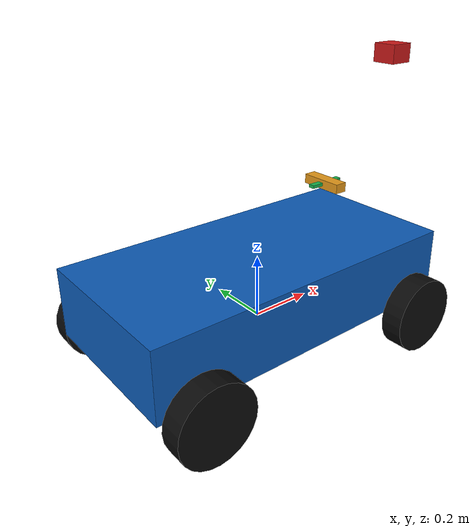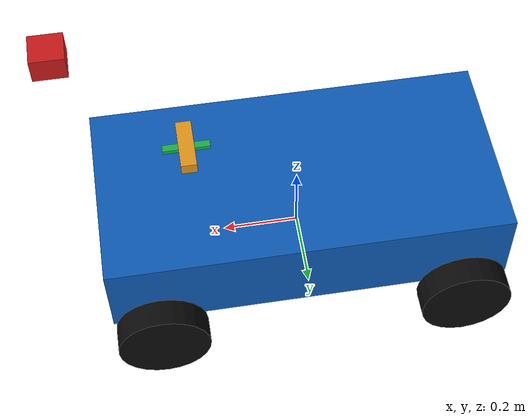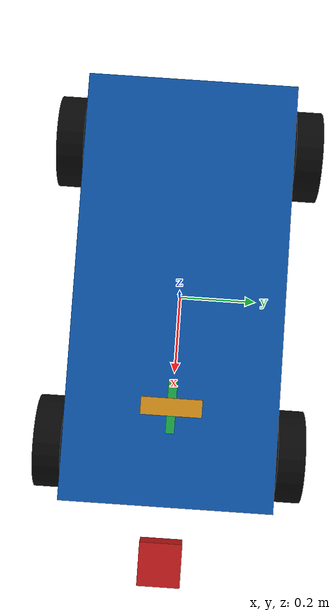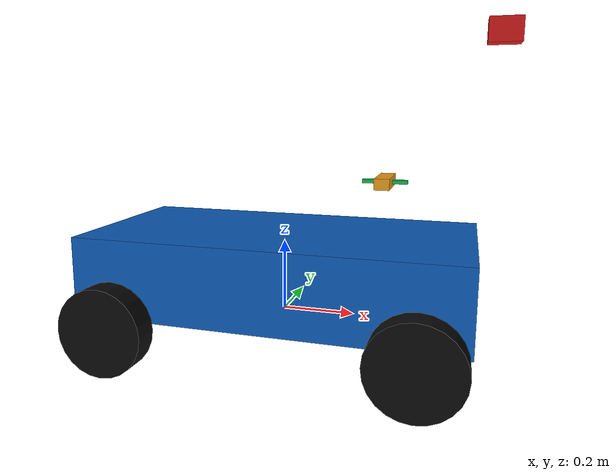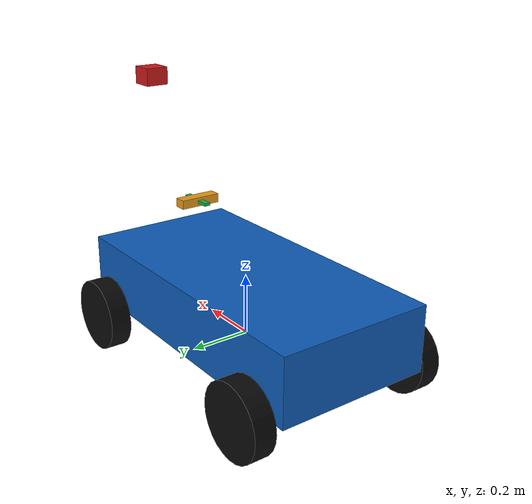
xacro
<?xml version="1.0"?>
<!-- Размеры и массы взяты из course kit: models/course_ackermann/model.sdf.
     Единицы СИ, оси REP-103: x вперёд, y влево, z вверх. -->
<robot name="course_ackermann" xmlns:xacro="http://www.ros.org/wiki/xacro">
  <xacro:arg name="wheel_base" default="0.8"/>
  <xacro:arg name="track_width" default="0.62"/>
  <xacro:arg name="wheel_radius" default="0.12"/>

  <xacro:property name="wheel_base" value="$(arg wheel_base)"/>
  <xacro:property name="track_width" value="$(arg track_width)"/>
  <xacro:property name="wheel_radius" value="$(arg wheel_radius)"/>
  <xacro:property name="wheel_width" value="0.07"/>
  <xacro:property name="wheel_mass" value="0.8"/>
  <xacro:property name="wheel_transverse_inertia"
                  value="${wheel_mass * (3 * wheel_radius**2 + wheel_width**2) / 12}"/>
  <xacro:property name="body_size" value="1.05 0.52 0.22"/>
  <xacro:property name="body_z" value="0.12"/>
  <xacro:property name="steering_limit" value="0.55"/>
  <xacro:property name="steering_effort" value="25.0"/>
  <!-- В SDF скорости руля нет, а URDF требует её у revolute. -->
  <xacro:property name="steering_velocity" value="2.0"/>
  <xacro:property name="sensor_xyz" value="0.28 0 0.38"/>
  <xacro:property name="sensor_mass" value="0.033333333333"/>
  <xacro:property name="sensor_inertia" value="0.000333333333"/>

  <material name="body"><color rgba="0.05 0.36 0.72 1"/></material>
  <material name="wheel"><color rgba="0.04 0.04 0.04 1"/></material>
  <material name="camera"><color rgba="0.9 0.6 0.1 1"/></material>
  <material name="lidar"><color rgba="0.8 0.1 0.1 1"/></material>
  <material name="imu"><color rgba="0.1 0.7 0.3 1"/></material>

  <xacro:macro name="diagonal_inertial" params="mass ixx iyy izz">
    <inertial>
      <mass value="${mass}"/>
      <inertia ixx="${ixx}" ixy="0" ixz="0" iyy="${iyy}" iyz="0" izz="${izz}"/>
    </inertial>
  </xacro:macro>

  <!-- Поворотный кулак: только сочленение руля, геометрии нет, как в SDF. -->
  <xacro:macro name="knuckle" params="prefix x y">
    <link name="${prefix}_knuckle">
      <xacro:diagonal_inertial mass="0.2" ixx="0.001" iyy="0.001" izz="0.001"/>
    </link>
    <joint name="${prefix}_steering_joint" type="revolute">
      <parent link="base_link"/>
      <child link="${prefix}_knuckle"/>
      <origin xyz="${x} ${y} 0"/>
      <axis xyz="0 0 1"/>
      <limit lower="${-steering_limit}" upper="${steering_limit}"
             effort="${steering_effort}" velocity="${steering_velocity}"/>
    </joint>
  </xacro:macro>

  <!-- Система колеса совпадает с корпусом, поэтому ось вращения y; цилиндр
       геометрии (его ось z) повёрнут на 90°. Инерция — цилиндр с осью y. -->
  <xacro:macro name="wheel" params="prefix parent x y">
    <link name="${prefix}_wheel">
      <visual>
        <origin rpy="${pi/2} 0 0"/>
        <geometry><cylinder radius="${wheel_radius}" length="${wheel_width}"/></geometry>
        <material name="wheel"/>
      </visual>
      <collision>
        <origin rpy="${pi/2} 0 0"/>
        <geometry><cylinder radius="${wheel_radius}" length="${wheel_width}"/></geometry>
      </collision>
      <xacro:diagonal_inertial
        mass="${wheel_mass}"
        ixx="${wheel_transverse_inertia}"
        iyy="${wheel_mass * wheel_radius**2 / 2}"
        izz="${wheel_transverse_inertia}"/>
    </link>
    <joint name="${prefix}_wheel_joint" type="continuous">
      <parent link="${parent}"/>
      <child link="${prefix}_wheel"/>
      <origin xyz="${x} ${y} 0"/>
      <axis xyz="0 1 0"/>
    </joint>
  </xacro:macro>

  <!-- В SDF у сенсоров нет геометрии: коробки условные, важна система координат. -->
  <xacro:macro name="sensor" params="name parent size">
    <link name="${name}_link">
      <visual>
        <geometry><box size="${size}"/></geometry>
        <material name="${name}"/>
      </visual>
      <collision>
        <geometry><box size="${size}"/></geometry>
      </collision>
      <xacro:diagonal_inertial mass="${sensor_mass}" ixx="${sensor_inertia}"
                               iyy="${sensor_inertia}" izz="${sensor_inertia}"/>
    </link>
    <joint name="${name}_joint" type="fixed">
      <parent link="${parent}"/>
      <child link="${name}_link"/>
      <origin xyz="${sensor_xyz}"/>
    </joint>
  </xacro:macro>

  <link name="base_link">
    <visual>
      <origin xyz="0 0 ${body_z}"/>
      <geometry><box size="${body_size}"/></geometry>
      <material name="body"/>
    </visual>
    <collision>
      <origin xyz="0 0 ${body_z}"/>
      <geometry><box size="${body_size}"/></geometry>
    </collision>
    <xacro:diagonal_inertial mass="12.0" ixx="0.55" iyy="1.10" izz="1.40"/>
  </link>

  <xacro:knuckle prefix="front_left" x="${wheel_base / 2}" y="${track_width / 2}"/>
  <xacro:knuckle prefix="front_right" x="${wheel_base / 2}" y="${-track_width / 2}"/>
  <xacro:wheel prefix="front_left" parent="front_left_knuckle" x="0" y="0"/>
  <xacro:wheel prefix="front_right" parent="front_right_knuckle" x="0" y="0"/>
  <xacro:wheel prefix="rear_left" parent="base_link"
               x="${-wheel_base / 2}" y="${track_width / 2}"/>
  <xacro:wheel prefix="rear_right" parent="base_link"
               x="${-wheel_base / 2}" y="${-track_width / 2}"/>

  <xacro:sensor name="camera" parent="base_link" size="0.04 0.14 0.03"/>
  <xacro:sensor name="lidar" parent="camera_link" size="0.08 0.08 0.06"/>
  <xacro:sensor name="imu" parent="base_link" size="0.12 0.02 0.01"/>
</robot>
